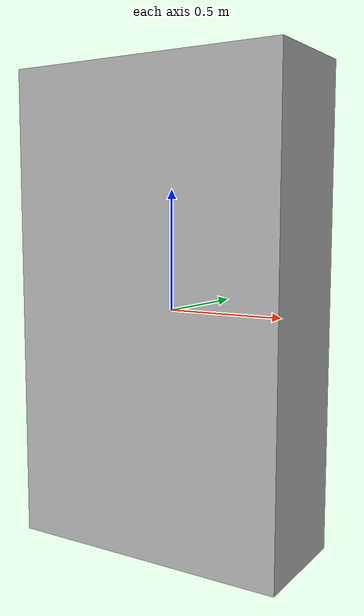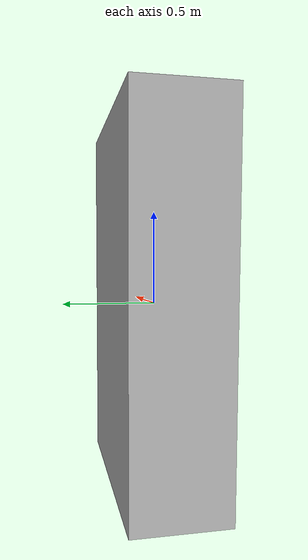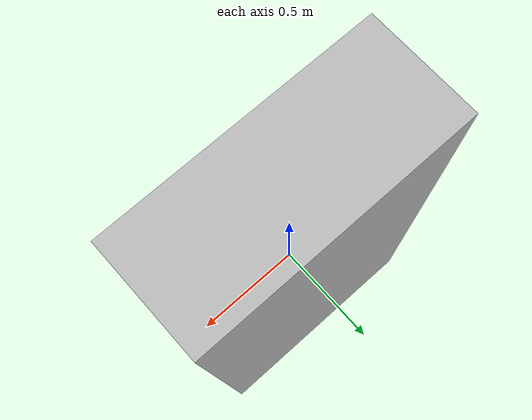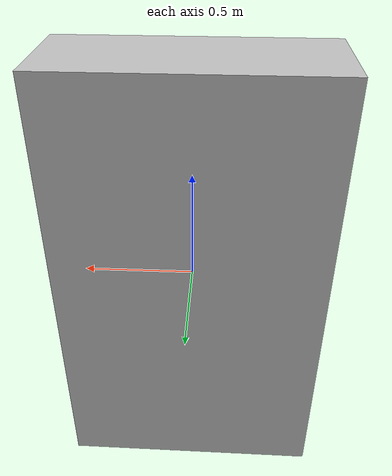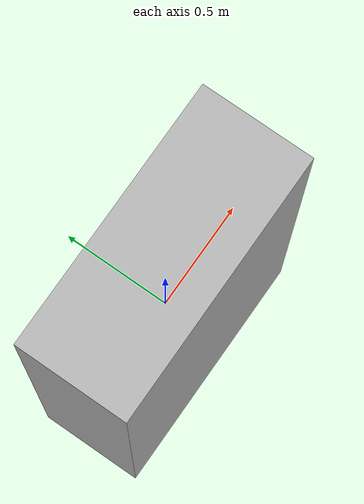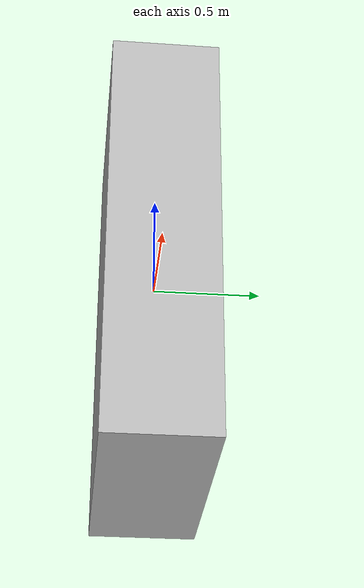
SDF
<?xml version="1.0" ?>
<sdf version="1.6">
  <model name="shelf">
    <static>1</static>
    <link name="link">
      <inertial>
        <mass>40.0</mass>
        <inertia>
          <ixx>1.0</ixx>
          <ixy>0.0</ixy>
          <ixz>0.0</ixz>
          <iyy>2.0</iyy>
          <iyz>0.0</iyz>
          <izz>3.0</izz>
        </inertia>
      </inertial>
      <visual name="visual">
        <geometry>
          <box>
            <size>1.2 0.5 2.0</size>
          </box>
        </geometry>
      </visual>
      <collision name="collision">
        <geometry>
          <box>
            <size>1.2 0.5 2.0</size>
          </box>
        </geometry>
      </collision>
    </link>
  </model>
</sdf>
